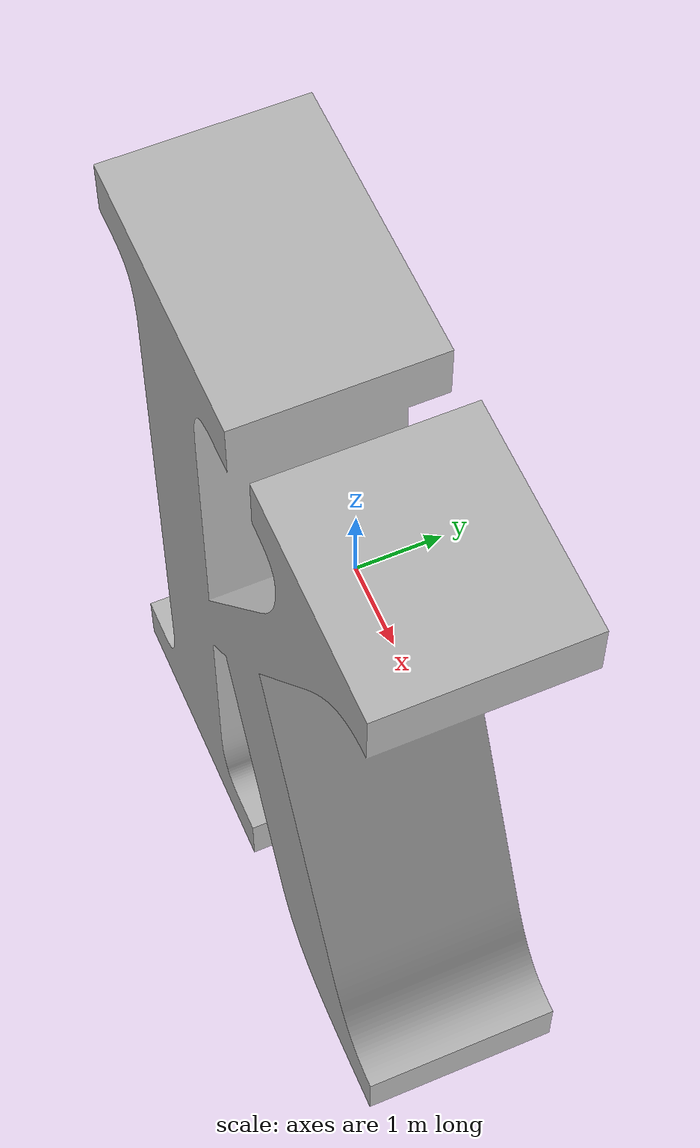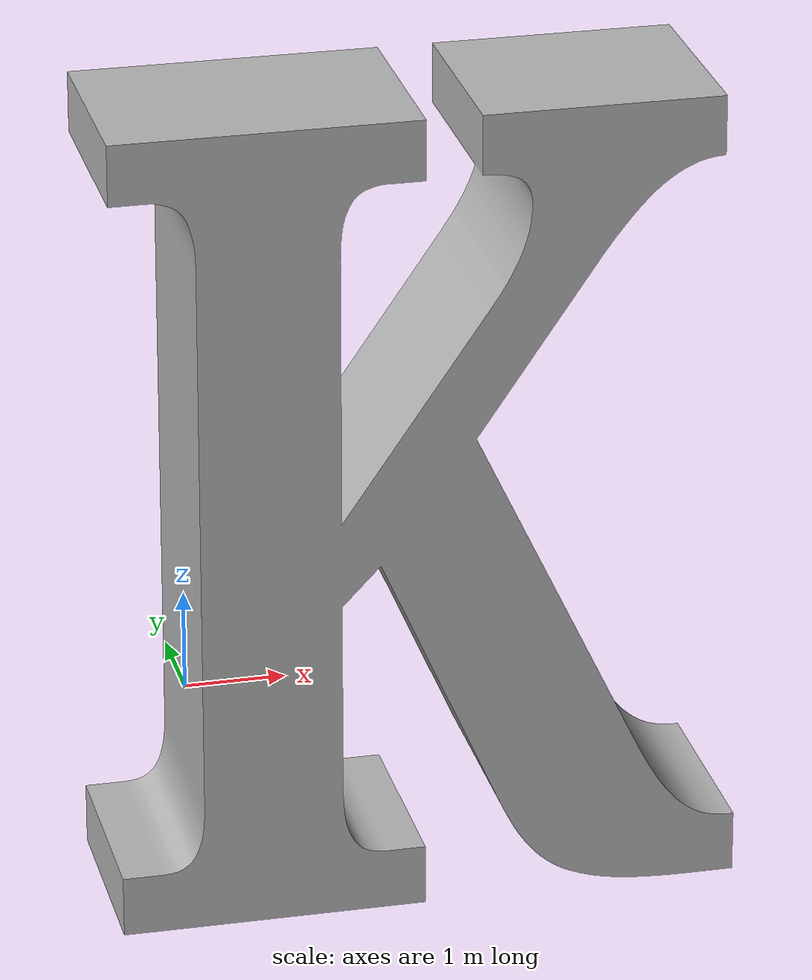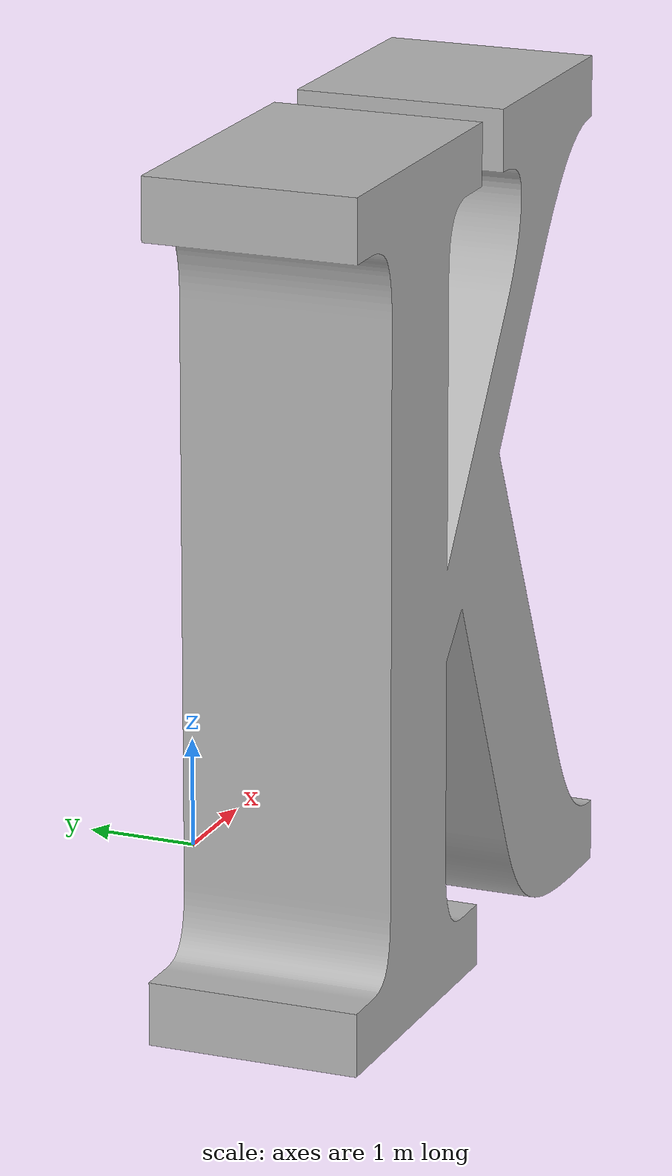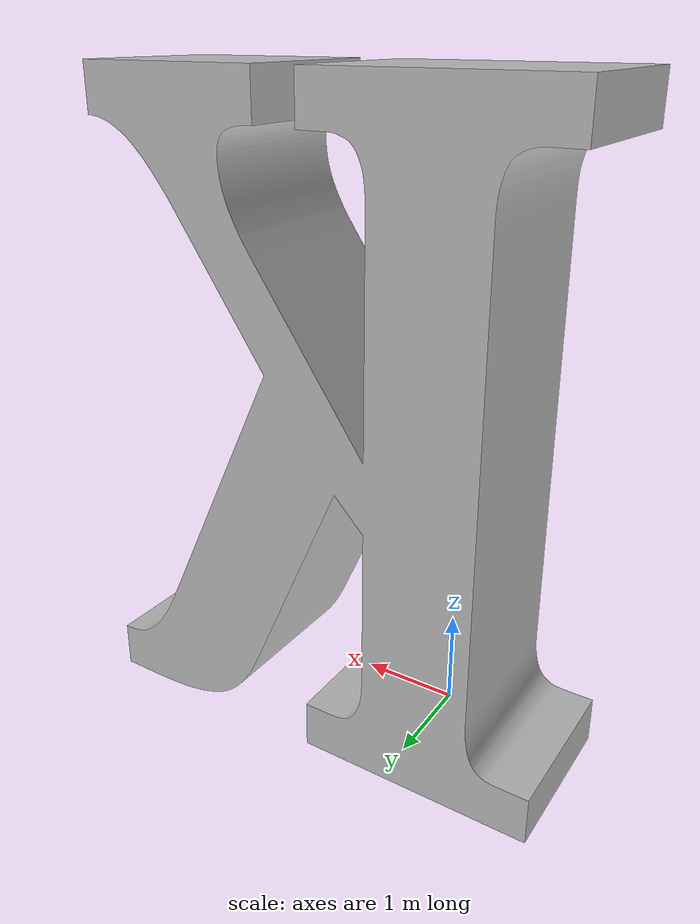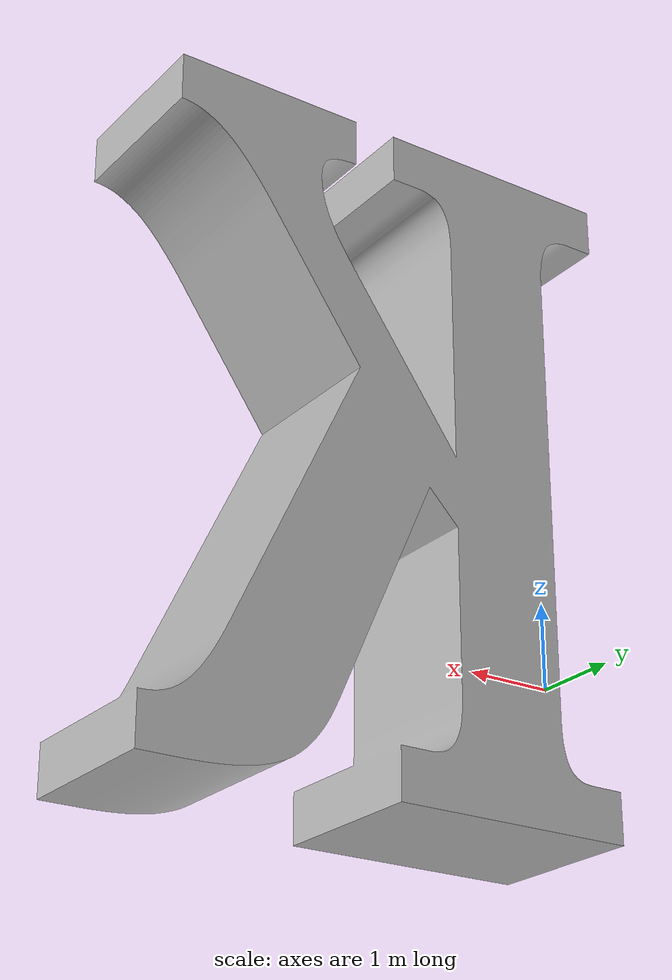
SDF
<sdf version='1.5'>
  <model name='text_K'>
    <link name='K'>
      <collision name='K_inertia_collision'>
        <pose frame=''>0 0 6.05 1.570796 -0 0</pose>
        <geometry>
          <mesh>
            <scale>0.2 0.2 0.2</scale>
            <uri>model://text_description/meshes/K.stl</uri>
          </mesh>
        </geometry>
        <surface>
          <contact>
            <ode>
              <min_depth>0.001</min_depth>
              <max_vel>0</max_vel>
            </ode>
          </contact>
          <friction>
            <ode/>
          </friction>
        </surface>
      </collision>
      <visual name='K_inertia_visual'>
        <pose frame=''>0 0 6.05 1.570796 -0 0</pose>
        <geometry>
          <mesh>
            <scale>0.2 0.2 0.2</scale>
            <uri>model://text_description/meshes/K.stl</uri>
          </mesh>
        </geometry>
      </visual>
      <kinematic>1</kinematic>
      <velocity_decay/>
    </link>
  </model>
</sdf>
